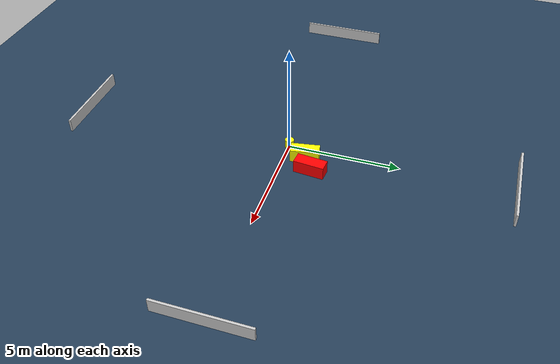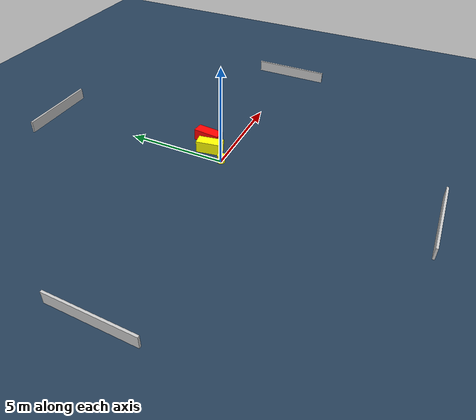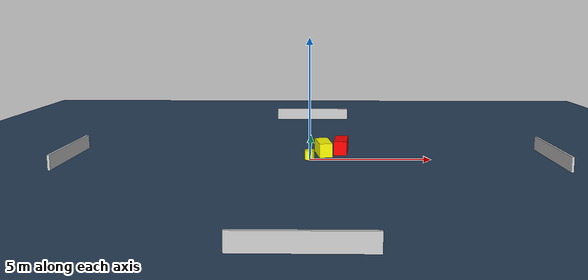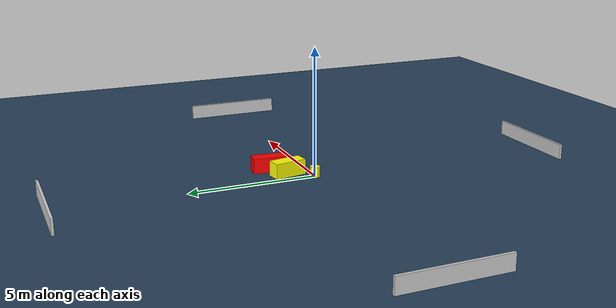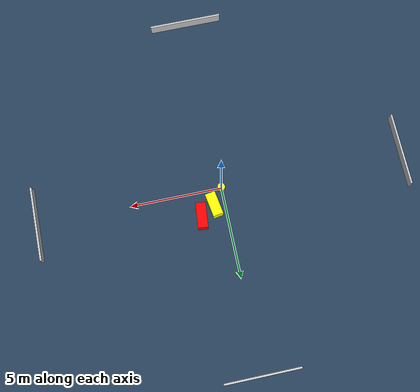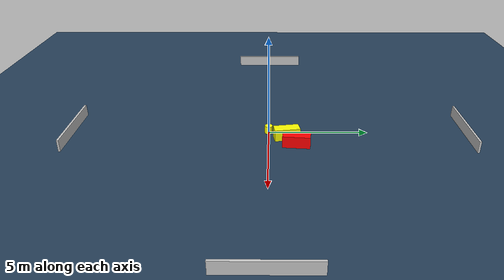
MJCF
<?xml version="1.0" ?>
<mujoco model="generated_environment">
  <option timestep="0.01" integrator="RK4" cone="elliptic"/>
  <default>
    <geom density="1"/>
  </default>
  <asset>
    <texture builtin="gradient" height="3072" name="skybox" rgb1="0.3 0.5 0.7" rgb2="0 0 0" type="skybox" width="512"/>
    <texture builtin="checker" height="300" name="groundplane" rgb1="0.2 0.3 0.4" rgb2="0.1 0.2 0.3" type="2d" width="300"/>
    <material name="groundplane" reflectance="0.2" texrepeat="5 5" texture="groundplane"/>
  </asset>
  <worldbody>
    <light dir="0 0 -1" directional="true" pos="0 0 1.5"/>
    <geom condim="3" friction="0.5 0.005 0.001" material="groundplane" name="floor" pos="0 0 0" size="0 0 0.05" type="plane"/>
    <body name="walls">
      <geom name="wall_1" condim="4" pos="-10.0 0.0 0.3" rgba="0.800000011920929 0.800000011920929 0.800000011920929 1.0" size="0.05 2.0 0.3" type="box"/>
      <geom name="wall_2" condim="4" pos="10.0 0.0 0.3" rgba="0.800000011920929 0.800000011920929 0.800000011920929 1.0" size="0.05 2.0 0.3" type="box"/>
      <geom name="wall_3" condim="4" pos="0.0 -10.0 0.3" rgba="0.800000011920929 0.800000011920929 0.800000011920929 1.0" size="2.0 0.05 0.3" type="box"/>
      <geom name="wall_4" condim="4" pos="0.0 10.0 0.3" rgba="0.800000011920929 0.800000011920929 0.800000011920929 1.0" size="2.0 0.05 0.3" type="box"/>
    </body>
    <body name="robot">
      <joint name="joint_x" type="slide" pos="0 0 0" axis="1 0 0"/>
      <joint name="joint_y" type="slide" pos="0 0 0" axis="0 1 0"/>
      <geom name="robot" type="cylinder" pos="0.0 0.0 0.2" size="0.2 0.2 0.0" mass="5.0" friction="1.0 0.005 0.0001" condim="4" rgba="1.0 1.0 0.0 1.0"/>
    </body>
    <body name="obstacle_1_movable">
      <geom name="obstacle_1_movable" condim="4" pos="0.5825018624328984 0.8986675855337402 0.3" euler="0 0 189.34538052396698" friction="0.0 0.005 0.001" rgba="1.0 1.0 0.0 1.0" size="0.27914127662355004 0.637341462981343 0.3" type="box" mass="0.1"/>
      <joint type="free"/>
    </body>
    <body name="obstacle_2_static">
      <geom name="obstacle_2_static" condim="4" pos="1.3462047975619047 1.363053827115576 0.3" euler="0 0 174.67084417870356" friction="0.0 0.005 0.001" rgba="1.0 0.0 0.0 1.0" size="0.27437837459830117 0.6784910929244747 0.3" type="box"/>
    </body>
  </worldbody>
  <actuator>
    <motor name="actuator_x" joint="joint_x" gear="1" ctrlrange="-1 1"/>
    <motor name="actuator_y" joint="joint_y" gear="1" ctrlrange="-1 1"/>
  </actuator>
</mujoco>
